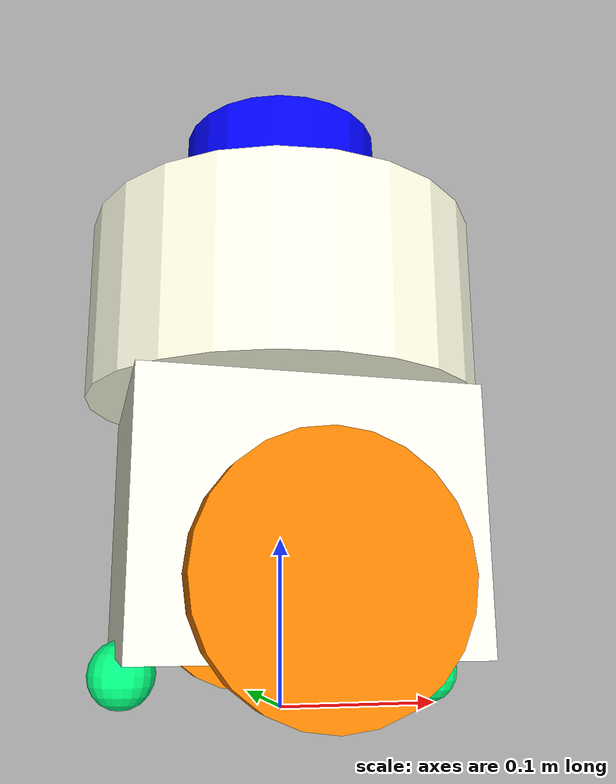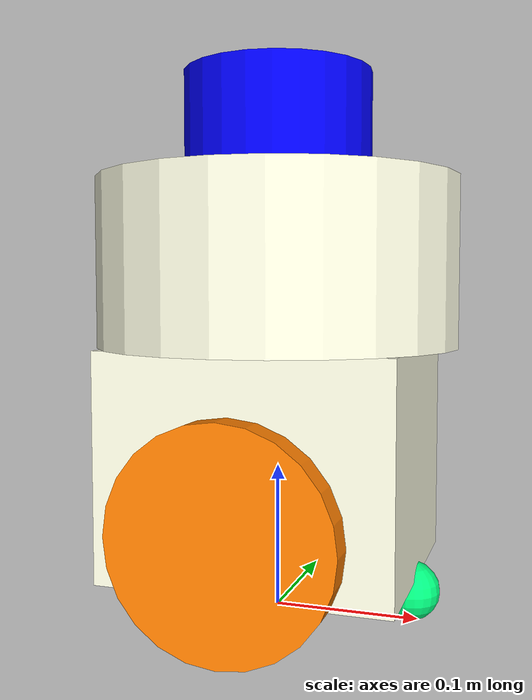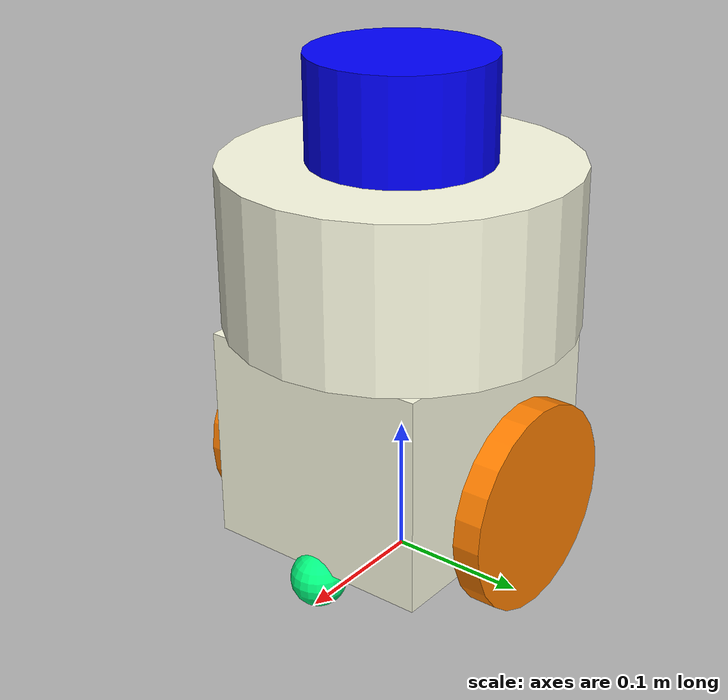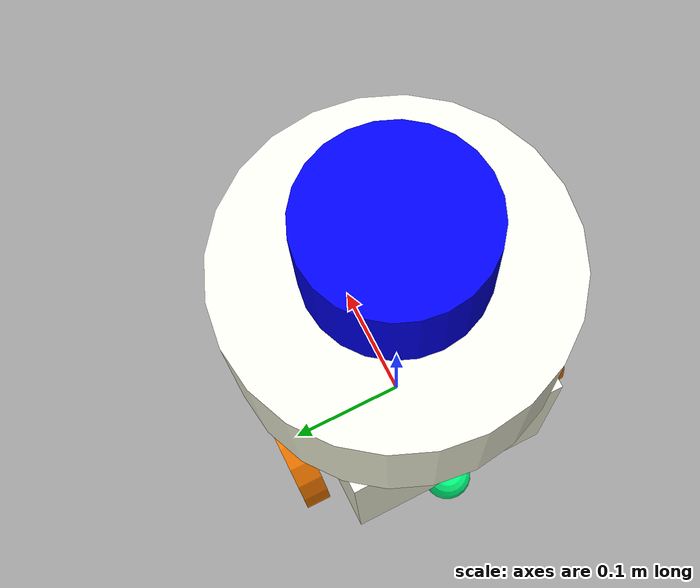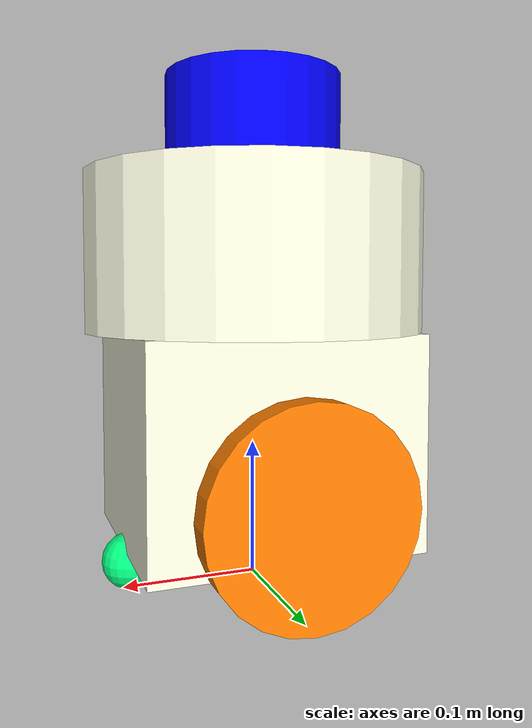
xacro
<?xml version="1.0"?>
<robot name="NeetBot" xmlns:xacro="http://ros.org/wiki/xacro">
  <xacro:include filename="$(find sim_model)/xacro/ydlidar_x4.xacro"/>

  <material name="body_color">
    <color rgba="1.0 1.0 0.9 2.0"/>
  </material>
  <material name="wheel_color">
    <color rgba="1.0 0.5 0.0 2.0"/>
  </material>
  <material name="ball_color">
    <color rgba="0.0 1.0 0.5 2.0"/>
  </material>

  <xacro:macro name="wheel_macro" params="parent prefix xyz">
    <joint name="${prefix}_joint" type="continuous">
      <origin xyz="${xyz}" rpy="${radians(-90)} 0 0"/>
      <parent link="${parent}"/>
      <child  link="${prefix}_link"/>
      <axis xyz="0 0 1" />
      <limit velocity="15.0" effort="1.25" />
      <dynamics damping="0.05"/>
    </joint>
    <transmission name="${prefix}_trans" type="SimpleTransmission">
      <type>transmission_interface/SimpleTransmission</type>
        <actuator name="${prefix}_motor">
          <mechanicalReduction>1</mechanicalReduction>
        </actuator>
      <joint name="${prefix}_joint">
        <hardwareInterface>hardware_interface/VelocityJointInterface</hardwareInterface>
      </joint>
    </transmission>
    <link name="${prefix}_link">
      <visual>
        <geometry>
          <cylinder radius="0.074" length="0.02" />
        </geometry>
        <material name="wheel_color"/>
      </visual>
      <collision>
        <geometry>
          <cylinder radius="0.074" length="0.02" />
        </geometry>
      </collision>
      <inertial>
        <origin xyz="0 0 0" rpy="0 0 0"/>
        <mass value="0.1"/>
       <inertia ixx="0.0001" ixy="0.0" ixz="0.0" iyy="0.0001" iyz="0.0" izz="0.0001"/>
      </inertial>
    </link>
    <gazebo reference="${prefix}_link">
      <material>Gazebo/Orange</material>
      <mu1 value="2.5" />
      <mu2 value="2.5" />
      <kp value="50000" />
      <kd value="10" />
    </gazebo>
  </xacro:macro>

  <link name="base_link"/>

  <xacro:macro name="ball_macro" params="parent prefix xyz">
    <joint name="${prefix}_joint" type="continuous">
      <origin xyz="${xyz}" rpy="0 0 0"/>
      <parent link="${parent}"/>
      <child  link="${prefix}_link"/>
    </joint>
    <link name="${prefix}_link">
      <visual>
        <geometry>
          <sphere radius="0.02"/>
        </geometry>
        <material name="ball_color"/>
      </visual>
      <collision>
        <geometry>
          <sphere radius="0.02" />
        </geometry>
      </collision>
      <inertial>
        <origin xyz="0 0 0" rpy="0 0 0"/>
        <mass value="0.05"/>
        <inertia ixx="0.001" ixy="0.0" ixz="0.0" iyy="0.001" iyz="0.0" izz="0.001"/>
      </inertial>
    </link>
    <gazebo reference="${prefix}_link">
      <material>Gazebo/White</material>
      <mu1 value="0.0"/>
      <mu2 value="0.0"/>
      <splip1 value="1.0"/>
      <splip2 value="1.0"/>
    </gazebo>
  </xacro:macro>

  <joint name="body_joint" type="fixed">
    <parent link="base_link"/>
    <child  link="body_link"/>
    <origin xyz="0.0 0 0.2425" rpy="0 0 0"/>
  </joint>
  <link name="body_link">
    <visual>
      <origin xyz="0 0 0" rpy="0 0 0" />
      <geometry>
        <cylinder radius="0.125" length="0.115"/>
      </geometry>
      <material name="body_color"/>
    </visual>
    <collision>
      <origin xyz="0 0 0" rpy="0 0 0" />
      <geometry>
        <cylinder radius="0.125" length="0.115" />
      </geometry>
    </collision>
    <inertial>
      <origin xyz="0 0 0" rpy="0 0 0"/>
      <mass value="0.25"/>
      <inertia ixx="0.001" ixy="0.0" ixz="0.0" iyy="0.001" iyz="0.0" izz="0.001"/>
    </inertial>
  </link>
  <gazebo reference="body_link">
    <material>Gazebo/White</material>
  </gazebo>

  <joint name="body_joint2" type="fixed">
    <parent link="base_link"/>
    <child  link="body_link2"/>
    <origin xyz="0.0 0 0.1075" rpy="0 0 0"/>
  </joint>
  <link name="body_link2">
    <visual>
      <origin xyz="0 0 0" rpy="0 0 0" />
      <geometry>
        <box size="0.20 0.170 0.155"/>
      </geometry>
      <material name="body_color"/>
    </visual>
    <collision>
      <origin xyz="0 0 0" rpy="0 0 0" />
      <geometry>
        <box size="0.25 0.170 0.155"/>
      </geometry>
    </collision>
    <inertial>
      <origin xyz="0 0 0" rpy="0 0 0"/>
      <mass value="1.25"/>
      <inertia ixx="0.001" ixy="0.0" ixz="0.0" iyy="0.001" iyz="0.0" izz="0.001"/>
    </inertial>
  </link>
  <gazebo reference="body_link2">
    <material>Gazebo/White</material>
  </gazebo>

  <xacro:wheel_macro prefix="left_wheel"  parent="base_link" xyz="0 0.1085 0.074"/>
  <xacro:wheel_macro prefix="right_wheel" parent="base_link" xyz="0 -0.1085 0.074"/>
  <xacro:ball_macro prefix="front_ball" parent="base_link" xyz="0.095 0.0 0.0201"/>
  <xacro:ball_macro prefix="back_ball" parent="base_link" xyz="-0.095 0.0 0.0201"/>
  <xacro:laser_macro prefix="laser" parent="base_link" xyz="0.0 0.0 0.323"/>

  <gazebo>
    <plugin name="gazebo_ros_control" filename="libgazebo_ros_control.so">
      <robotNamespace>/neet_bot</robotNamespace>
    </plugin>
  </gazebo>
</robot>

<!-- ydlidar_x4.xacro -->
<robot xmlns:xacro="http://ros.org/wiki/xacro">
  <material name="lidar_color">
    <color rgba="0.0 0.0 1.0 2.0"/>
  </material>

  <xacro:macro name="laser_macro" params="parent prefix xyz">
    <joint name="${prefix}_joint" type="fixed">
      <parent link="${parent}"/>
      <child  link="${prefix}_link"/>
      <origin xyz="${xyz}" rpy="0 0 -1.57"/>
    </joint>
    <link name="${prefix}_link">
      <visual>
        <origin xyz="0 0 0" rpy="0 0 0" />
        <geometry>
          <cylinder radius="0.065" length="0.1" />
        </geometry>
        <material name="lidar_color" />
      </visual>
      <collision>
        <origin xyz="0 0 0" rpy="0 0 0"/>
        <geometry>
          <cylinder radius="0.065" length="0.1" />
        </geometry>
      </collision>
    </link>
    <gazebo reference="${prefix}_link">
      <material>Gazebo/Blue</material>
      <sensor type="ray" name="${prefix}">
        <pose>0 0 0 0 0 0</pose>
        <visualize>false</visualize>
        <update_rate>8</update_rate>
        <ray>
          <scan>
            <horizontal>
              <samples>625</samples>
              <resolution>1</resolution>
              <min_angle>${radians(-180)}</min_angle>
              <max_angle>${radians( 180)}</max_angle>
            </horizontal>
          </scan>
          <range>
            <min>0.12</min>
            <max>12.0</max>
            <resolution>0.005</resolution>
          </range>
          <noise>
            <type>gaussian</type>
            <mean>0.0</mean>
            <stddev>0.01.7</stddev>
          </noise>
        </ray>
        <plugin name="gazebo_ros_lidar_controller" filename="libgazebo_ros_laser.so">
          <topicName>/${prefix}_link/scan</topicName>
          <frameName>${prefix}_link</frameName>
        </plugin>
      </sensor>
    </gazebo>
  </xacro:macro>
</robot>
